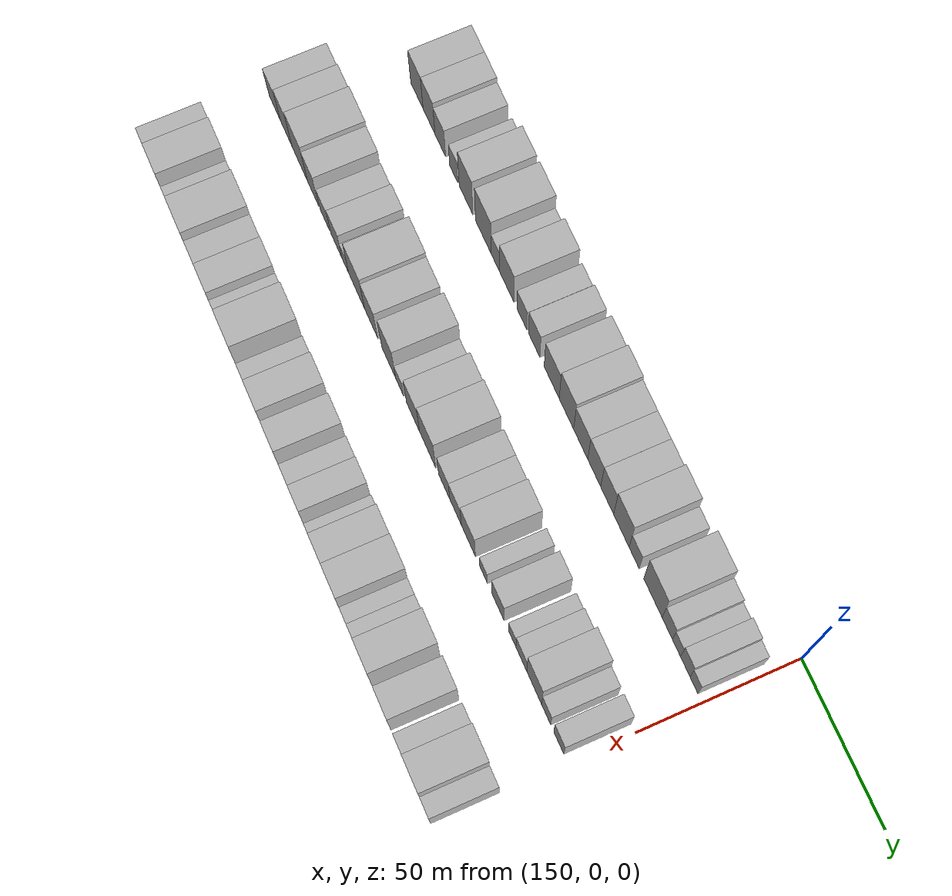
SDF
<sdf version="1.6">
 <world name="default">
  <model name="building_447">
   <static>1</static>
   <pose>170.0000 -196.7416 0 0.000000 0.000000 0.000000</pose>
   <link name="link">
    <pose>0 0 10.50 0 0 0</pose>
    <collision name="collision"><geometry><box><size>20.0000 9.2474 21.0000</size></box></geometry></collision>
    <visual name="visual">
     <cast_shadows>0</cast_shadows>
     <geometry><box><size>20.0000 9.2474 21.0000</size></box></geometry>
     <material>
      <script>
       <uri>model://HANNAS_wall/materials/scripts</uri>
       <uri>model://HANNAS_wall/materials/textures</uri>
       <name>vrc/HANNAS_wall</name>
      </script>
     </material>
    </visual>
   </link>
  </model>
  <model name="building_448">
   <static>1</static>
   <pose>170.0000 -187.6772 0 0.000000 0.000000 0.000000</pose>
   <link name="link">
    <pose>0 0 10.50 0 0 0</pose>
    <collision name="collision"><geometry><box><size>20.0000 8.8815 21.0000</size></box></geometry></collision>
    <visual name="visual">
     <cast_shadows>0</cast_shadows>
     <geometry><box><size>20.0000 8.8815 21.0000</size></box></geometry>
     <material>
      <script>
       <uri>model://HANNAS_wall/materials/scripts</uri>
       <uri>model://HANNAS_wall/materials/textures</uri>
       <name>vrc/HANNAS_wall</name>
      </script>
     </material>
    </visual>
   </link>
  </model>
  <model name="building_449">
   <static>1</static>
   <pose>170.0000 -179.3187 0 0.000000 0.000000 0.000000</pose>
   <link name="link">
    <pose>0 0 9.00 0 0 0</pose>
    <collision name="collision"><geometry><box><size>20.0000 7.8355 18.0000</size></box></geometry></collision>
    <visual name="visual">
     <cast_shadows>0</cast_shadows>
     <geometry><box><size>20.0000 7.8355 18.0000</size></box></geometry>
     <material>
      <script>
       <uri>model://HANNAS_wall/materials/scripts</uri>
       <uri>model://HANNAS_wall/materials/textures</uri>
       <name>vrc/HANNAS_wall</name>
      </script>
     </material>
    </visual>
   </link>
  </model>
  <model name="building_450">
   <static>1</static>
   <pose>170.0000 -169.3947 0 0.000000 0.000000 0.000000</pose>
   <link name="link">
    <pose>0 0 7.50 0 0 0</pose>
    <collision name="collision"><geometry><box><size>20.0000 6.0124 15.0000</size></box></geometry></collision>
    <visual name="visual">
     <cast_shadows>0</cast_shadows>
     <geometry><box><size>20.0000 6.0124 15.0000</size></box></geometry>
     <material>
      <script>
       <uri>model://HANNAS_wall/materials/scripts</uri>
       <uri>model://HANNAS_wall/materials/textures</uri>
       <name>vrc/HANNAS_wall</name>
      </script>
     </material>
    </visual>
   </link>
  </model>
  <model name="building_451">
   <static>1</static>
   <pose>170.0000 -160.4196 0 0.000000 0.000000 0.000000</pose>
   <link name="link">
    <pose>0 0 12.00 0 0 0</pose>
    <collision name="collision"><geometry><box><size>20.0000 9.9378 24.0000</size></box></geometry></collision>
    <visual name="visual">
     <cast_shadows>0</cast_shadows>
     <geometry><box><size>20.0000 9.9378 24.0000</size></box></geometry>
     <material>
      <script>
       <uri>model://HANNAS_wall/materials/scripts</uri>
       <uri>model://HANNAS_wall/materials/textures</uri>
       <name>vrc/HANNAS_wall</name>
      </script>
     </material>
    </visual>
   </link>
  </model>
  <model name="building_452">
   <static>1</static>
   <pose>170.0000 -147.8271 0 0.000000 0.000000 0.000000</pose>
   <link name="link">
    <pose>0 0 12.00 0 0 0</pose>
    <collision name="collision"><geometry><box><size>20.0000 11.2474 24.0000</size></box></geometry></collision>
    <visual name="visual">
     <cast_shadows>0</cast_shadows>
     <geometry><box><size>20.0000 11.2474 24.0000</size></box></geometry>
     <material>
      <script>
       <uri>model://HANNAS_wall/materials/scripts</uri>
       <uri>model://HANNAS_wall/materials/textures</uri>
       <name>vrc/HANNAS_wall</name>
      </script>
     </material>
    </visual>
   </link>
  </model>
  <model name="building_453">
   <static>1</static>
   <pose>170.0000 -139.1607 0 0.000000 0.000000 0.000000</pose>
   <link name="link">
    <pose>0 0 7.50 0 0 0</pose>
    <collision name="collision"><geometry><box><size>20.0000 6.0854 15.0000</size></box></geometry></collision>
    <visual name="visual">
     <cast_shadows>0</cast_shadows>
     <geometry><box><size>20.0000 6.0854 15.0000</size></box></geometry>
     <material>
      <script>
       <uri>model://HANNAS_wall/materials/scripts</uri>
       <uri>model://HANNAS_wall/materials/textures</uri>
       <name>vrc/HANNAS_wall</name>
      </script>
     </material>
    </visual>
   </link>
  </model>
  <model name="building_454">
   <static>1</static>
   <pose>170.0000 -131.0280 0 0.000000 0.000000 0.000000</pose>
   <link name="link">
    <pose>0 0 10.50 0 0 0</pose>
    <collision name="collision"><geometry><box><size>20.0000 10.1801 21.0000</size></box></geometry></collision>
    <visual name="visual">
     <cast_shadows>0</cast_shadows>
     <geometry><box><size>20.0000 10.1801 21.0000</size></box></geometry>
     <material>
      <script>
       <uri>model://HANNAS_wall/materials/scripts</uri>
       <uri>model://HANNAS_wall/materials/textures</uri>
       <name>vrc/HANNAS_wall</name>
      </script>
     </material>
    </visual>
   </link>
  </model>
  <model name="building_455">
   <static>1</static>
   <pose>170.0000 -120.3381 0 0.000000 0.000000 0.000000</pose>
   <link name="link">
    <pose>0 0 7.50 0 0 0</pose>
    <collision name="collision"><geometry><box><size>20.0000 7.1998 15.0000</size></box></geometry></collision>
    <visual name="visual">
     <cast_shadows>0</cast_shadows>
     <geometry><box><size>20.0000 7.1998 15.0000</size></box></geometry>
     <material>
      <script>
       <uri>model://HANNAS_wall/materials/scripts</uri>
       <uri>model://HANNAS_wall/materials/textures</uri>
       <name>vrc/HANNAS_wall</name>
      </script>
     </material>
    </visual>
   </link>
  </model>
  <model name="building_456">
   <static>1</static>
   <pose>170.0000 -111.7457 0 0.000000 0.000000 0.000000</pose>
   <link name="link">
    <pose>0 0 9.00 0 0 0</pose>
    <collision name="collision"><geometry><box><size>20.0000 7.9849 18.0000</size></box></geometry></collision>
    <visual name="visual">
     <cast_shadows>0</cast_shadows>
     <geometry><box><size>20.0000 7.9849 18.0000</size></box></geometry>
     <material>
      <script>
       <uri>model://HANNAS_wall/materials/scripts</uri>
       <uri>model://HANNAS_wall/materials/textures</uri>
       <name>vrc/HANNAS_wall</name>
      </script>
     </material>
    </visual>
   </link>
  </model>
  <model name="building_457">
   <static>1</static>
   <pose>170.0000 -99.5709 0 0.000000 0.000000 0.000000</pose>
   <link name="link">
    <pose>0 0 10.50 0 0 0</pose>
    <collision name="collision"><geometry><box><size>20.0000 10.3647 21.0000</size></box></geometry></collision>
    <visual name="visual">
     <cast_shadows>0</cast_shadows>
     <geometry><box><size>20.0000 10.3647 21.0000</size></box></geometry>
     <material>
      <script>
       <uri>model://HANNAS_wall/materials/scripts</uri>
       <uri>model://HANNAS_wall/materials/textures</uri>
       <name>vrc/HANNAS_wall</name>
      </script>
     </material>
    </visual>
   </link>
  </model>
  <model name="building_458">
   <static>1</static>
   <pose>170.0000 -89.4409 0 0.000000 0.000000 0.000000</pose>
   <link name="link">
    <pose>0 0 12.00 0 0 0</pose>
    <collision name="collision"><geometry><box><size>20.0000 9.8952 24.0000</size></box></geometry></collision>
    <visual name="visual">
     <cast_shadows>0</cast_shadows>
     <geometry><box><size>20.0000 9.8952 24.0000</size></box></geometry>
     <material>
      <script>
       <uri>model://HANNAS_wall/materials/scripts</uri>
       <uri>model://HANNAS_wall/materials/textures</uri>
       <name>vrc/HANNAS_wall</name>
      </script>
     </material>
    </visual>
   </link>
  </model>
  <model name="building_459">
   <static>1</static>
   <pose>170.0000 -79.7046 0 0.000000 0.000000 0.000000</pose>
   <link name="link">
    <pose>0 0 10.50 0 0 0</pose>
    <collision name="collision"><geometry><box><size>20.0000 9.5773 21.0000</size></box></geometry></collision>
    <visual name="visual">
     <cast_shadows>0</cast_shadows>
     <geometry><box><size>20.0000 9.5773 21.0000</size></box></geometry>
     <material>
      <script>
       <uri>model://HANNAS_wall/materials/scripts</uri>
       <uri>model://HANNAS_wall/materials/textures</uri>
       <name>vrc/HANNAS_wall</name>
      </script>
     </material>
    </visual>
   </link>
  </model>
  <model name="building_460">
   <static>1</static>
   <pose>170.0000 -70.5731 0 0.000000 0.000000 0.000000</pose>
   <link name="link">
    <pose>0 0 10.50 0 0 0</pose>
    <collision name="collision"><geometry><box><size>20.0000 8.6857 21.0000</size></box></geometry></collision>
    <visual name="visual">
     <cast_shadows>0</cast_shadows>
     <geometry><box><size>20.0000 8.6857 21.0000</size></box></geometry>
     <material>
      <script>
       <uri>model://HANNAS_wall/materials/scripts</uri>
       <uri>model://HANNAS_wall/materials/textures</uri>
       <name>vrc/HANNAS_wall</name>
      </script>
     </material>
    </visual>
   </link>
  </model>
  <model name="building_461">
   <static>1</static>
   <pose>170.0000 -61.8903 0 0.000000 0.000000 0.000000</pose>
   <link name="link">
    <pose>0 0 10.50 0 0 0</pose>
    <collision name="collision"><geometry><box><size>20.0000 8.6798 21.0000</size></box></geometry></collision>
    <visual name="visual">
     <cast_shadows>0</cast_shadows>
     <geometry><box><size>20.0000 8.6798 21.0000</size></box></geometry>
     <material>
      <script>
       <uri>model://HANNAS_wall/materials/scripts</uri>
       <uri>model://HANNAS_wall/materials/textures</uri>
       <name>vrc/HANNAS_wall</name>
      </script>
     </material>
    </visual>
   </link>
  </model>
  <model name="building_462">
   <static>1</static>
   <pose>170.0000 -52.4092 0 0.000000 0.000000 0.000000</pose>
   <link name="link">
    <pose>0 0 12.00 0 0 0</pose>
    <collision name="collision"><geometry><box><size>20.0000 10.2825 24.0000</size></box></geometry></collision>
    <visual name="visual">
     <cast_shadows>0</cast_shadows>
     <geometry><box><size>20.0000 10.2825 24.0000</size></box></geometry>
     <material>
      <script>
       <uri>model://HANNAS_wall/materials/scripts</uri>
       <uri>model://HANNAS_wall/materials/textures</uri>
       <name>vrc/HANNAS_wall</name>
      </script>
     </material>
    </visual>
   </link>
  </model>
  <model name="building_463">
   <static>1</static>
   <pose>170.0000 -43.9695 0 0.000000 0.000000 0.000000</pose>
   <link name="link">
    <pose>0 0 7.50 0 0 0</pose>
    <collision name="collision"><geometry><box><size>20.0000 6.5968 15.0000</size></box></geometry></collision>
    <visual name="visual">
     <cast_shadows>0</cast_shadows>
     <geometry><box><size>20.0000 6.5968 15.0000</size></box></geometry>
     <material>
      <script>
       <uri>model://HANNAS_wall/materials/scripts</uri>
       <uri>model://HANNAS_wall/materials/textures</uri>
       <name>vrc/HANNAS_wall</name>
      </script>
     </material>
    </visual>
   </link>
  </model>
  <model name="building_464">
   <static>1</static>
   <pose>170.0000 -31.6767 0 0.000000 0.000000 0.000000</pose>
   <link name="link">
    <pose>0 0 12.00 0 0 0</pose>
    <collision name="collision"><geometry><box><size>20.0000 11.9888 24.0000</size></box></geometry></collision>
    <visual name="visual">
     <cast_shadows>0</cast_shadows>
     <geometry><box><size>20.0000 11.9888 24.0000</size></box></geometry>
     <material>
      <script>
       <uri>model://HANNAS_wall/materials/scripts</uri>
       <uri>model://HANNAS_wall/materials/textures</uri>
       <name>vrc/HANNAS_wall</name>
      </script>
     </material>
    </visual>
   </link>
  </model>
  <model name="building_465">
   <static>1</static>
   <pose>170.0000 -22.3794 0 0.000000 0.000000 0.000000</pose>
   <link name="link">
    <pose>0 0 7.50 0 0 0</pose>
    <collision name="collision"><geometry><box><size>20.0000 6.6057 15.0000</size></box></geometry></collision>
    <visual name="visual">
     <cast_shadows>0</cast_shadows>
     <geometry><box><size>20.0000 6.6057 15.0000</size></box></geometry>
     <material>
      <script>
       <uri>model://HANNAS_wall/materials/scripts</uri>
       <uri>model://HANNAS_wall/materials/textures</uri>
       <name>vrc/HANNAS_wall</name>
      </script>
     </material>
    </visual>
   </link>
  </model>
  <model name="building_466">
   <static>1</static>
   <pose>170.0000 -16.4990 0 0.000000 0.000000 0.000000</pose>
   <link name="link">
    <pose>0 0 6.00 0 0 0</pose>
    <collision name="collision"><geometry><box><size>20.0000 5.1552 12.0000</size></box></geometry></collision>
    <visual name="visual">
     <cast_shadows>0</cast_shadows>
     <geometry><box><size>20.0000 5.1552 12.0000</size></box></geometry>
     <material>
      <script>
       <uri>model://HANNAS_wall/materials/scripts</uri>
       <uri>model://HANNAS_wall/materials/textures</uri>
       <name>vrc/HANNAS_wall</name>
      </script>
     </material>
    </visual>
   </link>
  </model>
  <model name="building_467">
   <static>1</static>
   <pose>170.0000 -10.8820 0 0.000000 0.000000 0.000000</pose>
   <link name="link">
    <pose>0 0 7.50 0 0 0</pose>
    <collision name="collision"><geometry><box><size>20.0000 6.0787 15.0000</size></box></geometry></collision>
    <visual name="visual">
     <cast_shadows>0</cast_shadows>
     <geometry><box><size>20.0000 6.0787 15.0000</size></box></geometry>
     <material>
      <script>
       <uri>model://HANNAS_wall/materials/scripts</uri>
       <uri>model://HANNAS_wall/materials/textures</uri>
       <name>vrc/HANNAS_wall</name>
      </script>
     </material>
    </visual>
   </link>
  </model>
  <model name="building_468">
   <static>1</static>
   <pose>170.0000 -5.3561 0 0.000000 0.000000 0.000000</pose>
   <link name="link">
    <pose>0 0 6.00 0 0 0</pose>
    <collision name="collision"><geometry><box><size>20.0000 4.9733 12.0000</size></box></geometry></collision>
    <visual name="visual">
     <cast_shadows>0</cast_shadows>
     <geometry><box><size>20.0000 4.9733 12.0000</size></box></geometry>
     <material>
      <script>
       <uri>model://HANNAS_wall/materials/scripts</uri>
       <uri>model://HANNAS_wall/materials/textures</uri>
       <name>vrc/HANNAS_wall</name>
      </script>
     </material>
    </visual>
   </link>
  </model>
  <model name="building_586">
   <static>1</static>
   <pose>210.0000 -210.0215 0 0.000000 0.000000 0.000000</pose>
   <link name="link">
    <pose>0 0 9.00 0 0 0</pose>
    <collision name="collision"><geometry><box><size>20.0000 8.8866 18.0000</size></box></geometry></collision>
    <visual name="visual">
     <cast_shadows>0</cast_shadows>
     <geometry><box><size>20.0000 8.8866 18.0000</size></box></geometry>
     <material>
      <script>
       <uri>model://HANNAS_wall/materials/scripts</uri>
       <uri>model://HANNAS_wall/materials/textures</uri>
       <name>vrc/HANNAS_wall</name>
      </script>
     </material>
    </visual>
   </link>
  </model>
  <model name="building_587">
   <static>1</static>
   <pose>210.0000 -200.9967 0 0.000000 0.000000 0.000000</pose>
   <link name="link">
    <pose>0 0 10.50 0 0 0</pose>
    <collision name="collision"><geometry><box><size>20.0000 9.1631 21.0000</size></box></geometry></collision>
    <visual name="visual">
     <cast_shadows>0</cast_shadows>
     <geometry><box><size>20.0000 9.1631 21.0000</size></box></geometry>
     <material>
      <script>
       <uri>model://HANNAS_wall/materials/scripts</uri>
       <uri>model://HANNAS_wall/materials/textures</uri>
       <name>vrc/HANNAS_wall</name>
      </script>
     </material>
    </visual>
   </link>
  </model>
  <model name="building_588">
   <static>1</static>
   <pose>210.0000 -190.4868 0 0.000000 0.000000 0.000000</pose>
   <link name="link">
    <pose>0 0 12.00 0 0 0</pose>
    <collision name="collision"><geometry><box><size>20.0000 11.8568 24.0000</size></box></geometry></collision>
    <visual name="visual">
     <cast_shadows>0</cast_shadows>
     <geometry><box><size>20.0000 11.8568 24.0000</size></box></geometry>
     <material>
      <script>
       <uri>model://HANNAS_wall/materials/scripts</uri>
       <uri>model://HANNAS_wall/materials/textures</uri>
       <name>vrc/HANNAS_wall</name>
      </script>
     </material>
    </visual>
   </link>
  </model>
  <model name="building_589">
   <static>1</static>
   <pose>210.0000 -180.2220 0 0.000000 0.000000 0.000000</pose>
   <link name="link">
    <pose>0 0 10.50 0 0 0</pose>
    <collision name="collision"><geometry><box><size>20.0000 8.6727 21.0000</size></box></geometry></collision>
    <visual name="visual">
     <cast_shadows>0</cast_shadows>
     <geometry><box><size>20.0000 8.6727 21.0000</size></box></geometry>
     <material>
      <script>
       <uri>model://HANNAS_wall/materials/scripts</uri>
       <uri>model://HANNAS_wall/materials/textures</uri>
       <name>vrc/HANNAS_wall</name>
      </script>
     </material>
    </visual>
   </link>
  </model>
  <model name="building_590">
   <static>1</static>
   <pose>210.0000 -171.2102 0 0.000000 0.000000 0.000000</pose>
   <link name="link">
    <pose>0 0 7.50 0 0 0</pose>
    <collision name="collision"><geometry><box><size>20.0000 7.3509 15.0000</size></box></geometry></collision>
    <visual name="visual">
     <cast_shadows>0</cast_shadows>
     <geometry><box><size>20.0000 7.3509 15.0000</size></box></geometry>
     <material>
      <script>
       <uri>model://HANNAS_wall/materials/scripts</uri>
       <uri>model://HANNAS_wall/materials/textures</uri>
       <name>vrc/HANNAS_wall</name>
      </script>
     </material>
    </visual>
   </link>
  </model>
  <model name="building_591">
   <static>1</static>
   <pose>210.0000 -162.3197 0 0.000000 0.000000 0.000000</pose>
   <link name="link">
    <pose>0 0 9.00 0 0 0</pose>
    <collision name="collision"><geometry><box><size>20.0000 8.4302 18.0000</size></box></geometry></collision>
    <visual name="visual">
     <cast_shadows>0</cast_shadows>
     <geometry><box><size>20.0000 8.4302 18.0000</size></box></geometry>
     <material>
      <script>
       <uri>model://HANNAS_wall/materials/scripts</uri>
       <uri>model://HANNAS_wall/materials/textures</uri>
       <name>vrc/HANNAS_wall</name>
      </script>
     </material>
    </visual>
   </link>
  </model>
  <model name="building_592">
   <static>1</static>
   <pose>210.0000 -155.6208 0 0.000000 0.000000 0.000000</pose>
   <link name="link">
    <pose>0 0 6.00 0 0 0</pose>
    <collision name="collision"><geometry><box><size>20.0000 4.9674 12.0000</size></box></geometry></collision>
    <visual name="visual">
     <cast_shadows>0</cast_shadows>
     <geometry><box><size>20.0000 4.9674 12.0000</size></box></geometry>
     <material>
      <script>
       <uri>model://HANNAS_wall/materials/scripts</uri>
       <uri>model://HANNAS_wall/materials/textures</uri>
       <name>vrc/HANNAS_wall</name>
      </script>
     </material>
    </visual>
   </link>
  </model>
  <model name="building_593">
   <static>1</static>
   <pose>210.0000 -147.2212 0 0.000000 0.000000 0.000000</pose>
   <link name="link">
    <pose>0 0 12.00 0 0 0</pose>
    <collision name="collision"><geometry><box><size>20.0000 11.8319 24.0000</size></box></geometry></collision>
    <visual name="visual">
     <cast_shadows>0</cast_shadows>
     <geometry><box><size>20.0000 11.8319 24.0000</size></box></geometry>
     <material>
      <script>
       <uri>model://HANNAS_wall/materials/scripts</uri>
       <uri>model://HANNAS_wall/materials/textures</uri>
       <name>vrc/HANNAS_wall</name>
      </script>
     </material>
    </visual>
   </link>
  </model>
  <model name="building_594">
   <static>1</static>
   <pose>210.0000 -136.4425 0 0.000000 0.000000 0.000000</pose>
   <link name="link">
    <pose>0 0 10.50 0 0 0</pose>
    <collision name="collision"><geometry><box><size>20.0000 9.7254 21.0000</size></box></geometry></collision>
    <visual name="visual">
     <cast_shadows>0</cast_shadows>
     <geometry><box><size>20.0000 9.7254 21.0000</size></box></geometry>
     <material>
      <script>
       <uri>model://HANNAS_wall/materials/scripts</uri>
       <uri>model://HANNAS_wall/materials/textures</uri>
       <name>vrc/HANNAS_wall</name>
      </script>
     </material>
    </visual>
   </link>
  </model>
  <model name="building_595">
   <static>1</static>
   <pose>210.0000 -123.4891 0 0.000000 0.000000 0.000000</pose>
   <link name="link">
    <pose>0 0 12.00 0 0 0</pose>
    <collision name="collision"><geometry><box><size>20.0000 10.1814 24.0000</size></box></geometry></collision>
    <visual name="visual">
     <cast_shadows>0</cast_shadows>
     <geometry><box><size>20.0000 10.1814 24.0000</size></box></geometry>
     <material>
      <script>
       <uri>model://HANNAS_wall/materials/scripts</uri>
       <uri>model://HANNAS_wall/materials/textures</uri>
       <name>vrc/HANNAS_wall</name>
      </script>
     </material>
    </visual>
   </link>
  </model>
  <model name="building_596">
   <static>1</static>
   <pose>210.0000 -115.5713 0 0.000000 0.000000 0.000000</pose>
   <link name="link">
    <pose>0 0 6.00 0 0 0</pose>
    <collision name="collision"><geometry><box><size>20.0000 5.6543 12.0000</size></box></geometry></collision>
    <visual name="visual">
     <cast_shadows>0</cast_shadows>
     <geometry><box><size>20.0000 5.6543 12.0000</size></box></geometry>
     <material>
      <script>
       <uri>model://HANNAS_wall/materials/scripts</uri>
       <uri>model://HANNAS_wall/materials/textures</uri>
       <name>vrc/HANNAS_wall</name>
      </script>
     </material>
    </visual>
   </link>
  </model>
  <model name="building_597">
   <static>1</static>
   <pose>210.0000 -105.9874 0 0.000000 0.000000 0.000000</pose>
   <link name="link">
    <pose>0 0 10.50 0 0 0</pose>
    <collision name="collision"><geometry><box><size>20.0000 9.5134 21.0000</size></box></geometry></collision>
    <visual name="visual">
     <cast_shadows>0</cast_shadows>
     <geometry><box><size>20.0000 9.5134 21.0000</size></box></geometry>
     <material>
      <script>
       <uri>model://HANNAS_wall/materials/scripts</uri>
       <uri>model://HANNAS_wall/materials/textures</uri>
       <name>vrc/HANNAS_wall</name>
      </script>
     </material>
    </visual>
   </link>
  </model>
  <model name="building_598">
   <static>1</static>
   <pose>210.0000 -95.4999 0 0.000000 0.000000 0.000000</pose>
   <link name="link">
    <pose>0 0 12.00 0 0 0</pose>
    <collision name="collision"><geometry><box><size>20.0000 11.4615 24.0000</size></box></geometry></collision>
    <visual name="visual">
     <cast_shadows>0</cast_shadows>
     <geometry><box><size>20.0000 11.4615 24.0000</size></box></geometry>
     <material>
      <script>
       <uri>model://HANNAS_wall/materials/scripts</uri>
       <uri>model://HANNAS_wall/materials/textures</uri>
       <name>vrc/HANNAS_wall</name>
      </script>
     </material>
    </visual>
   </link>
  </model>
  <model name="building_599">
   <static>1</static>
   <pose>210.0000 -83.8127 0 0.000000 0.000000 0.000000</pose>
   <link name="link">
    <pose>0 0 9.00 0 0 0</pose>
    <collision name="collision"><geometry><box><size>20.0000 7.9128 18.0000</size></box></geometry></collision>
    <visual name="visual">
     <cast_shadows>0</cast_shadows>
     <geometry><box><size>20.0000 7.9128 18.0000</size></box></geometry>
     <material>
      <script>
       <uri>model://HANNAS_wall/materials/scripts</uri>
       <uri>model://HANNAS_wall/materials/textures</uri>
       <name>vrc/HANNAS_wall</name>
      </script>
     </material>
    </visual>
   </link>
  </model>
  <model name="building_600">
   <static>1</static>
   <pose>210.0000 -75.8126 0 0.000000 0.000000 0.000000</pose>
   <link name="link">
    <pose>0 0 9.00 0 0 0</pose>
    <collision name="collision"><geometry><box><size>20.0000 8.0874 18.0000</size></box></geometry></collision>
    <visual name="visual">
     <cast_shadows>0</cast_shadows>
     <geometry><box><size>20.0000 8.0874 18.0000</size></box></geometry>
     <material>
      <script>
       <uri>model://HANNAS_wall/materials/scripts</uri>
       <uri>model://HANNAS_wall/materials/textures</uri>
       <name>vrc/HANNAS_wall</name>
      </script>
     </material>
    </visual>
   </link>
  </model>
  <model name="building_601">
   <static>1</static>
   <pose>210.0000 -66.9092 0 0.000000 0.000000 0.000000</pose>
   <link name="link">
    <pose>0 0 10.50 0 0 0</pose>
    <collision name="collision"><geometry><box><size>20.0000 9.7194 21.0000</size></box></geometry></collision>
    <visual name="visual">
     <cast_shadows>0</cast_shadows>
     <geometry><box><size>20.0000 9.7194 21.0000</size></box></geometry>
     <material>
      <script>
       <uri>model://HANNAS_wall/materials/scripts</uri>
       <uri>model://HANNAS_wall/materials/textures</uri>
       <name>vrc/HANNAS_wall</name>
      </script>
     </material>
    </visual>
   </link>
  </model>
  <model name="building_602">
   <static>1</static>
   <pose>210.0000 -56.4286 0 0.000000 0.000000 0.000000</pose>
   <link name="link">
    <pose>0 0 6.00 0 0 0</pose>
    <collision name="collision"><geometry><box><size>20.0000 5.2417 12.0000</size></box></geometry></collision>
    <visual name="visual">
     <cast_shadows>0</cast_shadows>
     <geometry><box><size>20.0000 5.2417 12.0000</size></box></geometry>
     <material>
      <script>
       <uri>model://HANNAS_wall/materials/scripts</uri>
       <uri>model://HANNAS_wall/materials/textures</uri>
       <name>vrc/HANNAS_wall</name>
      </script>
     </material>
    </visual>
   </link>
  </model>
  <model name="building_603">
   <static>1</static>
   <pose>210.0000 -46.6478 0 0.000000 0.000000 0.000000</pose>
   <link name="link">
    <pose>0 0 9.00 0 0 0</pose>
    <collision name="collision"><geometry><box><size>20.0000 8.3199 18.0000</size></box></geometry></collision>
    <visual name="visual">
     <cast_shadows>0</cast_shadows>
     <geometry><box><size>20.0000 8.3199 18.0000</size></box></geometry>
     <material>
      <script>
       <uri>model://HANNAS_wall/materials/scripts</uri>
       <uri>model://HANNAS_wall/materials/textures</uri>
       <name>vrc/HANNAS_wall</name>
      </script>
     </material>
    </visual>
   </link>
  </model>
  <model name="building_604">
   <static>1</static>
   <pose>210.0000 -36.9744 0 0.000000 0.000000 0.000000</pose>
   <link name="link">
    <pose>0 0 6.00 0 0 0</pose>
    <collision name="collision"><geometry><box><size>20.0000 5.0269 12.0000</size></box></geometry></collision>
    <visual name="visual">
     <cast_shadows>0</cast_shadows>
     <geometry><box><size>20.0000 5.0269 12.0000</size></box></geometry>
     <material>
      <script>
       <uri>model://HANNAS_wall/materials/scripts</uri>
       <uri>model://HANNAS_wall/materials/textures</uri>
       <name>vrc/HANNAS_wall</name>
      </script>
     </material>
    </visual>
   </link>
  </model>
  <model name="building_605">
   <static>1</static>
   <pose>210.0000 -30.8043 0 0.000000 0.000000 0.000000</pose>
   <link name="link">
    <pose>0 0 7.50 0 0 0</pose>
    <collision name="collision"><geometry><box><size>20.0000 7.3132 15.0000</size></box></geometry></collision>
    <visual name="visual">
     <cast_shadows>0</cast_shadows>
     <geometry><box><size>20.0000 7.3132 15.0000</size></box></geometry>
     <material>
      <script>
       <uri>model://HANNAS_wall/materials/scripts</uri>
       <uri>model://HANNAS_wall/materials/textures</uri>
       <name>vrc/HANNAS_wall</name>
      </script>
     </material>
    </visual>
   </link>
  </model>
  <model name="building_606">
   <static>1</static>
   <pose>210.0000 -22.2586 0 0.000000 0.000000 0.000000</pose>
   <link name="link">
    <pose>0 0 12.00 0 0 0</pose>
    <collision name="collision"><geometry><box><size>20.0000 9.7783 24.0000</size></box></geometry></collision>
    <visual name="visual">
     <cast_shadows>0</cast_shadows>
     <geometry><box><size>20.0000 9.7783 24.0000</size></box></geometry>
     <material>
      <script>
       <uri>model://HANNAS_wall/materials/scripts</uri>
       <uri>model://HANNAS_wall/materials/textures</uri>
       <name>vrc/HANNAS_wall</name>
      </script>
     </material>
    </visual>
   </link>
  </model>
  <model name="building_607">
   <static>1</static>
   <pose>210.0000 -14.3473 0 0.000000 0.000000 0.000000</pose>
   <link name="link">
    <pose>0 0 7.50 0 0 0</pose>
    <collision name="collision"><geometry><box><size>20.0000 6.0444 15.0000</size></box></geometry></collision>
    <visual name="visual">
     <cast_shadows>0</cast_shadows>
     <geometry><box><size>20.0000 6.0444 15.0000</size></box></geometry>
     <material>
      <script>
       <uri>model://HANNAS_wall/materials/scripts</uri>
       <uri>model://HANNAS_wall/materials/textures</uri>
       <name>vrc/HANNAS_wall</name>
      </script>
     </material>
    </visual>
   </link>
  </model>
  <model name="building_608">
   <static>1</static>
   <pose>210.0000 -6.0418 0 0.000000 0.000000 0.000000</pose>
   <link name="link">
    <pose>0 0 7.50 0 0 0</pose>
    <collision name="collision"><geometry><box><size>20.0000 6.5665 15.0000</size></box></geometry></collision>
    <visual name="visual">
     <cast_shadows>0</cast_shadows>
     <geometry><box><size>20.0000 6.5665 15.0000</size></box></geometry>
     <material>
      <script>
       <uri>model://HANNAS_wall/materials/scripts</uri>
       <uri>model://HANNAS_wall/materials/textures</uri>
       <name>vrc/HANNAS_wall</name>
      </script>
     </material>
    </visual>
   </link>
  </model>
  <model name="building_725">
   <static>1</static>
   <pose>250.0000 -207.8215 0 0.000000 0.000000 0.000000</pose>
   <link name="link">
    <pose>0 0 9.00 0 0 0</pose>
    <collision name="collision"><geometry><box><size>20.0000 8.1519 18.0000</size></box></geometry></collision>
    <visual name="visual">
     <cast_shadows>0</cast_shadows>
     <geometry><box><size>20.0000 8.1519 18.0000</size></box></geometry>
     <material>
      <script>
       <uri>model://HANNAS_wall/materials/scripts</uri>
       <uri>model://HANNAS_wall/materials/textures</uri>
       <name>vrc/HANNAS_wall</name>
      </script>
     </material>
    </visual>
   </link>
  </model>
  <model name="building_726">
   <static>1</static>
   <pose>250.0000 -198.6394 0 0.000000 0.000000 0.000000</pose>
   <link name="link">
    <pose>0 0 12.00 0 0 0</pose>
    <collision name="collision"><geometry><box><size>20.0000 10.2123 24.0000</size></box></geometry></collision>
    <visual name="visual">
     <cast_shadows>0</cast_shadows>
     <geometry><box><size>20.0000 10.2123 24.0000</size></box></geometry>
     <material>
      <script>
       <uri>model://HANNAS_wall/materials/scripts</uri>
       <uri>model://HANNAS_wall/materials/textures</uri>
       <name>vrc/HANNAS_wall</name>
      </script>
     </material>
    </visual>
   </link>
  </model>
  <model name="building_727">
   <static>1</static>
   <pose>250.0000 -189.8878 0 0.000000 0.000000 0.000000</pose>
   <link name="link">
    <pose>0 0 7.50 0 0 0</pose>
    <collision name="collision"><geometry><box><size>20.0000 7.2909 15.0000</size></box></geometry></collision>
    <visual name="visual">
     <cast_shadows>0</cast_shadows>
     <geometry><box><size>20.0000 7.2909 15.0000</size></box></geometry>
     <material>
      <script>
       <uri>model://HANNAS_wall/materials/scripts</uri>
       <uri>model://HANNAS_wall/materials/textures</uri>
       <name>vrc/HANNAS_wall</name>
      </script>
     </material>
    </visual>
   </link>
  </model>
  <model name="building_728">
   <static>1</static>
   <pose>250.0000 -180.2504 0 0.000000 0.000000 0.000000</pose>
   <link name="link">
    <pose>0 0 12.00 0 0 0</pose>
    <collision name="collision"><geometry><box><size>20.0000 11.9840 24.0000</size></box></geometry></collision>
    <visual name="visual">
     <cast_shadows>0</cast_shadows>
     <geometry><box><size>20.0000 11.9840 24.0000</size></box></geometry>
     <material>
      <script>
       <uri>model://HANNAS_wall/materials/scripts</uri>
       <uri>model://HANNAS_wall/materials/textures</uri>
       <name>vrc/HANNAS_wall</name>
      </script>
     </material>
    </visual>
   </link>
  </model>
  <model name="building_729">
   <static>1</static>
   <pose>250.0000 -170.4298 0 0.000000 0.000000 0.000000</pose>
   <link name="link">
    <pose>0 0 9.00 0 0 0</pose>
    <collision name="collision"><geometry><box><size>20.0000 7.6572 18.0000</size></box></geometry></collision>
    <visual name="visual">
     <cast_shadows>0</cast_shadows>
     <geometry><box><size>20.0000 7.6572 18.0000</size></box></geometry>
     <material>
      <script>
       <uri>model://HANNAS_wall/materials/scripts</uri>
       <uri>model://HANNAS_wall/materials/textures</uri>
       <name>vrc/HANNAS_wall</name>
      </script>
     </material>
    </visual>
   </link>
  </model>
  <model name="building_730">
   <static>1</static>
   <pose>250.0000 -160.8787 0 0.000000 0.000000 0.000000</pose>
   <link name="link">
    <pose>0 0 10.50 0 0 0</pose>
    <collision name="collision"><geometry><box><size>20.0000 9.4450 21.0000</size></box></geometry></collision>
    <visual name="visual">
     <cast_shadows>0</cast_shadows>
     <geometry><box><size>20.0000 9.4450 21.0000</size></box></geometry>
     <material>
      <script>
       <uri>model://HANNAS_wall/materials/scripts</uri>
       <uri>model://HANNAS_wall/materials/textures</uri>
       <name>vrc/HANNAS_wall</name>
      </script>
     </material>
    </visual>
   </link>
  </model>
  <model name="building_731">
   <static>1</static>
   <pose>250.0000 -152.9708 0 0.000000 0.000000 0.000000</pose>
   <link name="link">
    <pose>0 0 7.50 0 0 0</pose>
    <collision name="collision"><geometry><box><size>20.0000 6.3707 15.0000</size></box></geometry></collision>
    <visual name="visual">
     <cast_shadows>0</cast_shadows>
     <geometry><box><size>20.0000 6.3707 15.0000</size></box></geometry>
     <material>
      <script>
       <uri>model://HANNAS_wall/materials/scripts</uri>
       <uri>model://HANNAS_wall/materials/textures</uri>
       <name>vrc/HANNAS_wall</name>
      </script>
     </material>
    </visual>
   </link>
  </model>
  <model name="building_732">
   <static>1</static>
   <pose>250.0000 -143.8361 0 0.000000 0.000000 0.000000</pose>
   <link name="link">
    <pose>0 0 12.00 0 0 0</pose>
    <collision name="collision"><geometry><box><size>20.0000 11.8986 24.0000</size></box></geometry></collision>
    <visual name="visual">
     <cast_shadows>0</cast_shadows>
     <geometry><box><size>20.0000 11.8986 24.0000</size></box></geometry>
     <material>
      <script>
       <uri>model://HANNAS_wall/materials/scripts</uri>
       <uri>model://HANNAS_wall/materials/textures</uri>
       <name>vrc/HANNAS_wall</name>
      </script>
     </material>
    </visual>
   </link>
  </model>
  <model name="building_733">
   <static>1</static>
   <pose>250.0000 -132.2836 0 0.000000 0.000000 0.000000</pose>
   <link name="link">
    <pose>0 0 7.50 0 0 0</pose>
    <collision name="collision"><geometry><box><size>20.0000 7.2065 15.0000</size></box></geometry></collision>
    <visual name="visual">
     <cast_shadows>0</cast_shadows>
     <geometry><box><size>20.0000 7.2065 15.0000</size></box></geometry>
     <material>
      <script>
       <uri>model://HANNAS_wall/materials/scripts</uri>
       <uri>model://HANNAS_wall/materials/textures</uri>
       <name>vrc/HANNAS_wall</name>
      </script>
     </material>
    </visual>
   </link>
  </model>
  <model name="building_734">
   <static>1</static>
   <pose>250.0000 -123.7958 0 0.000000 0.000000 0.000000</pose>
   <link name="link">
    <pose>0 0 10.50 0 0 0</pose>
    <collision name="collision"><geometry><box><size>20.0000 9.7691 21.0000</size></box></geometry></collision>
    <visual name="visual">
     <cast_shadows>0</cast_shadows>
     <geometry><box><size>20.0000 9.7691 21.0000</size></box></geometry>
     <material>
      <script>
       <uri>model://HANNAS_wall/materials/scripts</uri>
       <uri>model://HANNAS_wall/materials/textures</uri>
       <name>vrc/HANNAS_wall</name>
      </script>
     </material>
    </visual>
   </link>
  </model>
  <model name="building_735">
   <static>1</static>
   <pose>250.0000 -111.1634 0 0.000000 0.000000 0.000000</pose>
   <link name="link">
    <pose>0 0 10.50 0 0 0</pose>
    <collision name="collision"><geometry><box><size>20.0000 9.4957 21.0000</size></box></geometry></collision>
    <visual name="visual">
     <cast_shadows>0</cast_shadows>
     <geometry><box><size>20.0000 9.4957 21.0000</size></box></geometry>
     <material>
      <script>
       <uri>model://HANNAS_wall/materials/scripts</uri>
       <uri>model://HANNAS_wall/materials/textures</uri>
       <name>vrc/HANNAS_wall</name>
      </script>
     </material>
    </visual>
   </link>
  </model>
  <model name="building_736">
   <static>1</static>
   <pose>250.0000 -100.7705 0 0.000000 0.000000 0.000000</pose>
   <link name="link">
    <pose>0 0 7.50 0 0 0</pose>
    <collision name="collision"><geometry><box><size>20.0000 7.2901 15.0000</size></box></geometry></collision>
    <visual name="visual">
     <cast_shadows>0</cast_shadows>
     <geometry><box><size>20.0000 7.2901 15.0000</size></box></geometry>
     <material>
      <script>
       <uri>model://HANNAS_wall/materials/scripts</uri>
       <uri>model://HANNAS_wall/materials/textures</uri>
       <name>vrc/HANNAS_wall</name>
      </script>
     </material>
    </visual>
   </link>
  </model>
  <model name="building_737">
   <static>1</static>
   <pose>250.0000 -93.0801 0 0.000000 0.000000 0.000000</pose>
   <link name="link">
    <pose>0 0 9.00 0 0 0</pose>
    <collision name="collision"><geometry><box><size>20.0000 8.0907 18.0000</size></box></geometry></collision>
    <visual name="visual">
     <cast_shadows>0</cast_shadows>
     <geometry><box><size>20.0000 8.0907 18.0000</size></box></geometry>
     <material>
      <script>
       <uri>model://HANNAS_wall/materials/scripts</uri>
       <uri>model://HANNAS_wall/materials/textures</uri>
       <name>vrc/HANNAS_wall</name>
      </script>
     </material>
    </visual>
   </link>
  </model>
  <model name="building_738">
   <static>1</static>
   <pose>250.0000 -84.4571 0 0.000000 0.000000 0.000000</pose>
   <link name="link">
    <pose>0 0 6.00 0 0 0</pose>
    <collision name="collision"><geometry><box><size>20.0000 5.1552 12.0000</size></box></geometry></collision>
    <visual name="visual">
     <cast_shadows>0</cast_shadows>
     <geometry><box><size>20.0000 5.1552 12.0000</size></box></geometry>
     <material>
      <script>
       <uri>model://HANNAS_wall/materials/scripts</uri>
       <uri>model://HANNAS_wall/materials/textures</uri>
       <name>vrc/HANNAS_wall</name>
      </script>
     </material>
    </visual>
   </link>
  </model>
  <model name="building_739">
   <static>1</static>
   <pose>250.0000 -77.0464 0 0.000000 0.000000 0.000000</pose>
   <link name="link">
    <pose>0 0 10.50 0 0 0</pose>
    <collision name="collision"><geometry><box><size>20.0000 9.6663 21.0000</size></box></geometry></collision>
    <visual name="visual">
     <cast_shadows>0</cast_shadows>
     <geometry><box><size>20.0000 9.6663 21.0000</size></box></geometry>
     <material>
      <script>
       <uri>model://HANNAS_wall/materials/scripts</uri>
       <uri>model://HANNAS_wall/materials/textures</uri>
       <name>vrc/HANNAS_wall</name>
      </script>
     </material>
    </visual>
   </link>
  </model>
  <model name="building_740">
   <static>1</static>
   <pose>250.0000 -67.0227 0 0.000000 0.000000 0.000000</pose>
   <link name="link">
    <pose>0 0 12.00 0 0 0</pose>
    <collision name="collision"><geometry><box><size>20.0000 10.3810 24.0000</size></box></geometry></collision>
    <visual name="visual">
     <cast_shadows>0</cast_shadows>
     <geometry><box><size>20.0000 10.3810 24.0000</size></box></geometry>
     <material>
      <script>
       <uri>model://HANNAS_wall/materials/scripts</uri>
       <uri>model://HANNAS_wall/materials/textures</uri>
       <name>vrc/HANNAS_wall</name>
      </script>
     </material>
    </visual>
   </link>
  </model>
  <model name="building_741">
   <static>1</static>
   <pose>250.0000 -59.3478 0 0.000000 0.000000 0.000000</pose>
   <link name="link">
    <pose>0 0 6.00 0 0 0</pose>
    <collision name="collision"><geometry><box><size>20.0000 4.9688 12.0000</size></box></geometry></collision>
    <visual name="visual">
     <cast_shadows>0</cast_shadows>
     <geometry><box><size>20.0000 4.9688 12.0000</size></box></geometry>
     <material>
      <script>
       <uri>model://HANNAS_wall/materials/scripts</uri>
       <uri>model://HANNAS_wall/materials/textures</uri>
       <name>vrc/HANNAS_wall</name>
      </script>
     </material>
    </visual>
   </link>
  </model>
  <model name="building_742">
   <static>1</static>
   <pose>250.0000 -54.1566 0 0.000000 0.000000 0.000000</pose>
   <link name="link">
    <pose>0 0 6.00 0 0 0</pose>
    <collision name="collision"><geometry><box><size>20.0000 5.4136 12.0000</size></box></geometry></collision>
    <visual name="visual">
     <cast_shadows>0</cast_shadows>
     <geometry><box><size>20.0000 5.4136 12.0000</size></box></geometry>
     <material>
      <script>
       <uri>model://HANNAS_wall/materials/scripts</uri>
       <uri>model://HANNAS_wall/materials/textures</uri>
       <name>vrc/HANNAS_wall</name>
      </script>
     </material>
    </visual>
   </link>
  </model>
  <model name="building_743">
   <static>1</static>
   <pose>250.0000 -45.3119 0 0.000000 0.000000 0.000000</pose>
   <link name="link">
    <pose>0 0 12.00 0 0 0</pose>
    <collision name="collision"><geometry><box><size>20.0000 10.2757 24.0000</size></box></geometry></collision>
    <visual name="visual">
     <cast_shadows>0</cast_shadows>
     <geometry><box><size>20.0000 10.2757 24.0000</size></box></geometry>
     <material>
      <script>
       <uri>model://HANNAS_wall/materials/scripts</uri>
       <uri>model://HANNAS_wall/materials/textures</uri>
       <name>vrc/HANNAS_wall</name>
      </script>
     </material>
    </visual>
   </link>
  </model>
  <model name="building_744">
   <static>1</static>
   <pose>250.0000 -32.3332 0 0.000000 0.000000 0.000000</pose>
   <link name="link">
    <pose>0 0 10.50 0 0 0</pose>
    <collision name="collision"><geometry><box><size>20.0000 9.6819 21.0000</size></box></geometry></collision>
    <visual name="visual">
     <cast_shadows>0</cast_shadows>
     <geometry><box><size>20.0000 9.6819 21.0000</size></box></geometry>
     <material>
      <script>
       <uri>model://HANNAS_wall/materials/scripts</uri>
       <uri>model://HANNAS_wall/materials/textures</uri>
       <name>vrc/HANNAS_wall</name>
      </script>
     </material>
    </visual>
   </link>
  </model>
  <model name="building_745">
   <static>1</static>
   <pose>250.0000 -21.0051 0 0.000000 0.000000 0.000000</pose>
   <link name="link">
    <pose>0 0 7.50 0 0 0</pose>
    <collision name="collision"><geometry><box><size>20.0000 6.9742 15.0000</size></box></geometry></collision>
    <visual name="visual">
     <cast_shadows>0</cast_shadows>
     <geometry><box><size>20.0000 6.9742 15.0000</size></box></geometry>
     <material>
      <script>
       <uri>model://HANNAS_wall/materials/scripts</uri>
       <uri>model://HANNAS_wall/materials/textures</uri>
       <name>vrc/HANNAS_wall</name>
      </script>
     </material>
    </visual>
   </link>
  </model>
  <model name="building_746">
   <static>1</static>
   <pose>250.0000 -12.0312 0 0.000000 0.000000 0.000000</pose>
   <link name="link">
    <pose>0 0 12.00 0 0 0</pose>
    <collision name="collision"><geometry><box><size>20.0000 10.9735 24.0000</size></box></geometry></collision>
    <visual name="visual">
     <cast_shadows>0</cast_shadows>
     <geometry><box><size>20.0000 10.9735 24.0000</size></box></geometry>
     <material>
      <script>
       <uri>model://HANNAS_wall/materials/scripts</uri>
       <uri>model://HANNAS_wall/materials/textures</uri>
       <name>vrc/HANNAS_wall</name>
      </script>
     </material>
    </visual>
   </link>
  </model>
  <model name="building_747">
   <static>1</static>
   <pose>250.0000 -3.4497 0 0.000000 0.000000 0.000000</pose>
   <link name="link">
    <pose>0 0 7.50 0 0 0</pose>
    <collision name="collision"><geometry><box><size>20.0000 6.1895 15.0000</size></box></geometry></collision>
    <visual name="visual">
     <cast_shadows>0</cast_shadows>
     <geometry><box><size>20.0000 6.1895 15.0000</size></box></geometry>
     <material>
      <script>
       <uri>model://HANNAS_wall/materials/scripts</uri>
       <uri>model://HANNAS_wall/materials/textures</uri>
       <name>vrc/HANNAS_wall</name>
      </script>
     </material>
    </visual>
   </link>
  </model>
 </world>
</sdf>
